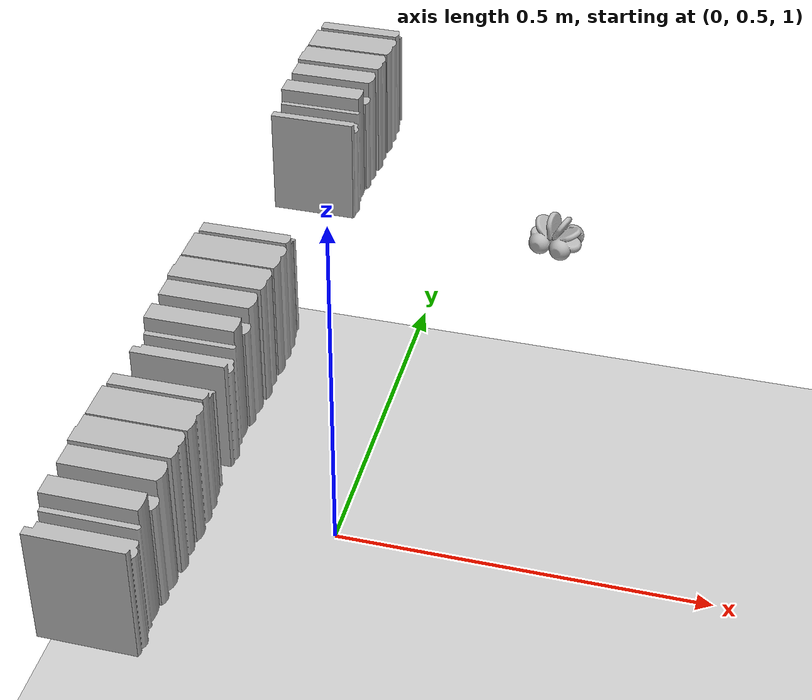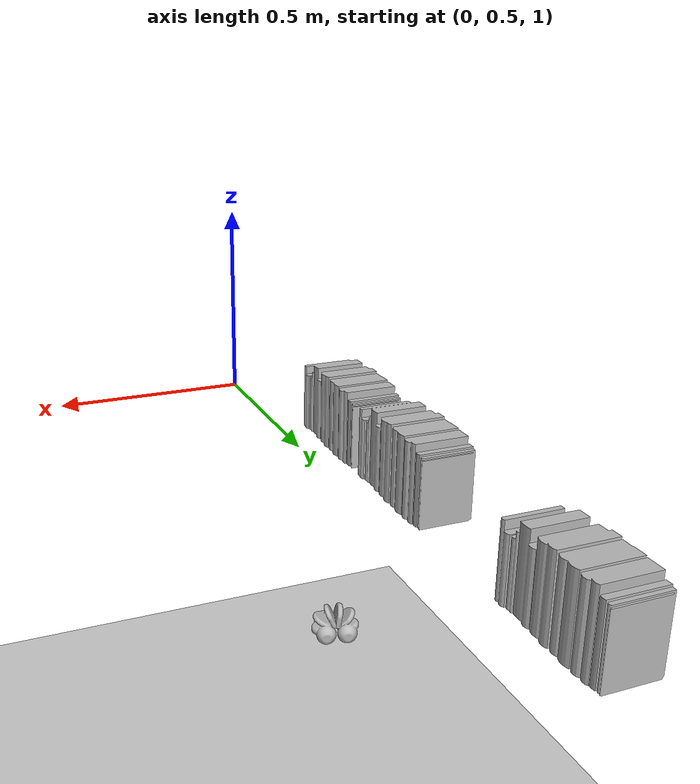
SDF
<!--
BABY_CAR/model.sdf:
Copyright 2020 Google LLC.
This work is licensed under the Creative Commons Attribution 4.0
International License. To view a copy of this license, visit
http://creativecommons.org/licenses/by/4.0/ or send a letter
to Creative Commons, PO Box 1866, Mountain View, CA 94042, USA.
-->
<sdf version="1.6">
 <world name="office">
  <include><uri>model://sun</uri></include>
  <include><uri>model://ground_plane</uri></include>
  <include>
   <name>Books_1</name>
   <static>true</static>
   <pose>-0.25 0.4 0.8 0 0 1.57079632679</pose>
   <uri>model://books</uri>
  </include>
  <include>
   <name>Books_2</name>
   <static>true</static>
   <pose>-0.25 0.8 0.8 0 0 1.57079632679</pose>
   <uri>model://books</uri>
  </include>
  <include>
   <name>Books_3</name>
   <static>true</static>
   <pose>-0.25 1.5 0.8 0 0 1.57079632679</pose>
   <uri>model://books</uri>
  </include>
  <include>
   <name>toy</name>
   <static>true</static>
   <pose>0.12 1.5 0.8 0 0 1.3</pose>
   <uri>model://BABY_CAR</uri>
  </include>
 </world>
</sdf>

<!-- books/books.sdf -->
<sdf version="1.5">
  <model name="books">
    <static>true</static>
    <link name="books_link">
        <collision name="books_collision">
         <geometry>
            <mesh>
                <uri>model://books/meshes/model.dae</uri>
            </mesh>
        </geometry>
      </collision>

      <visual name="books_mesh">
        <cast_shadows>true</cast_shadows>
        <geometry>
            <mesh>
                <uri>model://books/meshes/model.dae</uri>
            </mesh>
        </geometry>
      </visual>
    </link>
  </model>
</sdf>

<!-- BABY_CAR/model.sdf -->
<sdf version="1.6">
  <model name="BABY_CAR">
    <link name="link_0">
      <visual name="visual">
        <geometry>
          <mesh>
            <uri>meshes/model.obj</uri>
          </mesh>
        </geometry>
      </visual>
      <collision name="collision_0">
        <geometry>
          <mesh>
            <uri>meshes/model.obj</uri>
          </mesh>
        </geometry>
      </collision>
    </link>
  </model>
</sdf>
